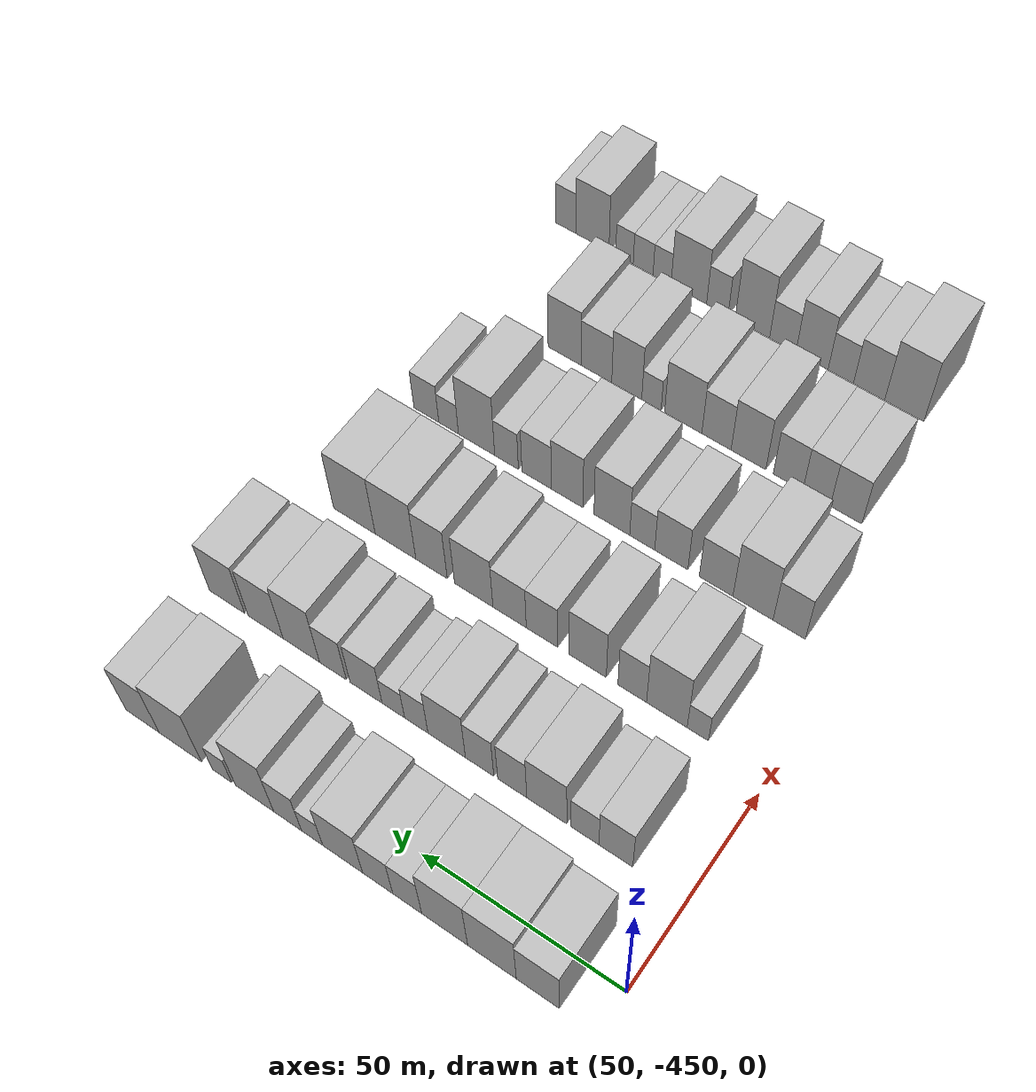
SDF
<sdf version="1.6">
 <world name="default">
  <model name="building_11">
   <static>1</static>
   <pose>50.0000 -435.6907 0 0.000000 0.000000 0.000000</pose>
   <link name="link">
    <pose>0 0 10.50 0 0 0</pose>
    <collision name="collision"><geometry><box><size>20.0000 10.3249 21.0000</size></box></geometry></collision>
    <visual name="visual">
     <cast_shadows>0</cast_shadows>
     <geometry><box><size>20.0000 10.3249 21.0000</size></box></geometry>
     <material>
      <script>
       <uri>model://HANNAS_wall/materials/scripts</uri>
       <uri>model://HANNAS_wall/materials/textures</uri>
       <name>vrc/HANNAS_wall</name>
      </script>
     </material>
    </visual>
   </link>
  </model>
  <model name="building_12">
   <static>1</static>
   <pose>50.0000 -424.6149 0 0.000000 0.000000 0.000000</pose>
   <link name="link">
    <pose>0 0 12.00 0 0 0</pose>
    <collision name="collision"><geometry><box><size>20.0000 11.8268 24.0000</size></box></geometry></collision>
    <visual name="visual">
     <cast_shadows>0</cast_shadows>
     <geometry><box><size>20.0000 11.8268 24.0000</size></box></geometry>
     <material>
      <script>
       <uri>model://HANNAS_wall/materials/scripts</uri>
       <uri>model://HANNAS_wall/materials/textures</uri>
       <name>vrc/HANNAS_wall</name>
      </script>
     </material>
    </visual>
   </link>
  </model>
  <model name="building_13">
   <static>1</static>
   <pose>50.0000 -413.0159 0 0.000000 0.000000 0.000000</pose>
   <link name="link">
    <pose>0 0 12.00 0 0 0</pose>
    <collision name="collision"><geometry><box><size>20.0000 11.3711 24.0000</size></box></geometry></collision>
    <visual name="visual">
     <cast_shadows>0</cast_shadows>
     <geometry><box><size>20.0000 11.3711 24.0000</size></box></geometry>
     <material>
      <script>
       <uri>model://HANNAS_wall/materials/scripts</uri>
       <uri>model://HANNAS_wall/materials/textures</uri>
       <name>vrc/HANNAS_wall</name>
      </script>
     </material>
    </visual>
   </link>
  </model>
  <model name="building_14">
   <static>1</static>
   <pose>50.0000 -403.6938 0 0.000000 0.000000 0.000000</pose>
   <link name="link">
    <pose>0 0 9.00 0 0 0</pose>
    <collision name="collision"><geometry><box><size>20.0000 7.2731 18.0000</size></box></geometry></collision>
    <visual name="visual">
     <cast_shadows>0</cast_shadows>
     <geometry><box><size>20.0000 7.2731 18.0000</size></box></geometry>
     <material>
      <script>
       <uri>model://HANNAS_wall/materials/scripts</uri>
       <uri>model://HANNAS_wall/materials/textures</uri>
       <name>vrc/HANNAS_wall</name>
      </script>
     </material>
    </visual>
   </link>
  </model>
  <model name="building_15">
   <static>1</static>
   <pose>50.0000 -396.2237 0 0.000000 0.000000 0.000000</pose>
   <link name="link">
    <pose>0 0 9.00 0 0 0</pose>
    <collision name="collision"><geometry><box><size>20.0000 7.6671 18.0000</size></box></geometry></collision>
    <visual name="visual">
     <cast_shadows>0</cast_shadows>
     <geometry><box><size>20.0000 7.6671 18.0000</size></box></geometry>
     <material>
      <script>
       <uri>model://HANNAS_wall/materials/scripts</uri>
       <uri>model://HANNAS_wall/materials/textures</uri>
       <name>vrc/HANNAS_wall</name>
      </script>
     </material>
    </visual>
   </link>
  </model>
  <model name="building_16">
   <static>1</static>
   <pose>50.0000 -387.2429 0 0.000000 0.000000 0.000000</pose>
   <link name="link">
    <pose>0 0 10.50 0 0 0</pose>
    <collision name="collision"><geometry><box><size>20.0000 10.2946 21.0000</size></box></geometry></collision>
    <visual name="visual">
     <cast_shadows>0</cast_shadows>
     <geometry><box><size>20.0000 10.2946 21.0000</size></box></geometry>
     <material>
      <script>
       <uri>model://HANNAS_wall/materials/scripts</uri>
       <uri>model://HANNAS_wall/materials/textures</uri>
       <name>vrc/HANNAS_wall</name>
      </script>
     </material>
    </visual>
   </link>
  </model>
  <model name="building_17">
   <static>1</static>
   <pose>50.0000 -379.3388 0 0.000000 0.000000 0.000000</pose>
   <link name="link">
    <pose>0 0 6.00 0 0 0</pose>
    <collision name="collision"><geometry><box><size>20.0000 5.5136 12.0000</size></box></geometry></collision>
    <visual name="visual">
     <cast_shadows>0</cast_shadows>
     <geometry><box><size>20.0000 5.5136 12.0000</size></box></geometry>
     <material>
      <script>
       <uri>model://HANNAS_wall/materials/scripts</uri>
       <uri>model://HANNAS_wall/materials/textures</uri>
       <name>vrc/HANNAS_wall</name>
      </script>
     </material>
    </visual>
   </link>
  </model>
  <model name="building_18">
   <static>1</static>
   <pose>50.0000 -372.9021 0 0.000000 0.000000 0.000000</pose>
   <link name="link">
    <pose>0 0 9.00 0 0 0</pose>
    <collision name="collision"><geometry><box><size>20.0000 7.3597 18.0000</size></box></geometry></collision>
    <visual name="visual">
     <cast_shadows>0</cast_shadows>
     <geometry><box><size>20.0000 7.3597 18.0000</size></box></geometry>
     <material>
      <script>
       <uri>model://HANNAS_wall/materials/scripts</uri>
       <uri>model://HANNAS_wall/materials/textures</uri>
       <name>vrc/HANNAS_wall</name>
      </script>
     </material>
    </visual>
   </link>
  </model>
  <model name="building_19">
   <static>1</static>
   <pose>50.0000 -364.1135 0 0.000000 0.000000 0.000000</pose>
   <link name="link">
    <pose>0 0 12.00 0 0 0</pose>
    <collision name="collision"><geometry><box><size>20.0000 10.2173 24.0000</size></box></geometry></collision>
    <visual name="visual">
     <cast_shadows>0</cast_shadows>
     <geometry><box><size>20.0000 10.2173 24.0000</size></box></geometry>
     <material>
      <script>
       <uri>model://HANNAS_wall/materials/scripts</uri>
       <uri>model://HANNAS_wall/materials/textures</uri>
       <name>vrc/HANNAS_wall</name>
      </script>
     </material>
    </visual>
   </link>
  </model>
  <model name="building_20">
   <static>1</static>
   <pose>50.0000 -355.3929 0 0.000000 0.000000 0.000000</pose>
   <link name="link">
    <pose>0 0 6.00 0 0 0</pose>
    <collision name="collision"><geometry><box><size>20.0000 5.2241 12.0000</size></box></geometry></collision>
    <visual name="visual">
     <cast_shadows>0</cast_shadows>
     <geometry><box><size>20.0000 5.2241 12.0000</size></box></geometry>
     <material>
      <script>
       <uri>model://HANNAS_wall/materials/scripts</uri>
       <uri>model://HANNAS_wall/materials/textures</uri>
       <name>vrc/HANNAS_wall</name>
      </script>
     </material>
    </visual>
   </link>
  </model>
  <model name="building_21">
   <static>1</static>
   <pose>50.0000 -343.9864 0 0.000000 0.000000 0.000000</pose>
   <link name="link">
    <pose>0 0 12.00 0 0 0</pose>
    <collision name="collision"><geometry><box><size>20.0000 11.5888 24.0000</size></box></geometry></collision>
    <visual name="visual">
     <cast_shadows>0</cast_shadows>
     <geometry><box><size>20.0000 11.5888 24.0000</size></box></geometry>
     <material>
      <script>
       <uri>model://HANNAS_wall/materials/scripts</uri>
       <uri>model://HANNAS_wall/materials/textures</uri>
       <name>vrc/HANNAS_wall</name>
      </script>
     </material>
    </visual>
   </link>
  </model>
  <model name="building_22">
   <static>1</static>
   <pose>50.0000 -333.5360 0 0.000000 0.000000 0.000000</pose>
   <link name="link">
    <pose>0 0 10.50 0 0 0</pose>
    <collision name="collision"><geometry><box><size>20.0000 9.3120 21.0000</size></box></geometry></collision>
    <visual name="visual">
     <cast_shadows>0</cast_shadows>
     <geometry><box><size>20.0000 9.3120 21.0000</size></box></geometry>
     <material>
      <script>
       <uri>model://HANNAS_wall/materials/scripts</uri>
       <uri>model://HANNAS_wall/materials/textures</uri>
       <name>vrc/HANNAS_wall</name>
      </script>
     </material>
    </visual>
   </link>
  </model>
  <model name="building_137">
   <static>1</static>
   <pose>82.0000 -432.7867 0 0.000000 0.000000 0.000000</pose>
   <link name="link">
    <pose>0 0 9.00 0 0 0</pose>
    <collision name="collision"><geometry><box><size>20.0000 8.2923 18.0000</size></box></geometry></collision>
    <visual name="visual">
     <cast_shadows>0</cast_shadows>
     <geometry><box><size>20.0000 8.2923 18.0000</size></box></geometry>
     <material>
      <script>
       <uri>model://HANNAS_wall/materials/scripts</uri>
       <uri>model://HANNAS_wall/materials/textures</uri>
       <name>vrc/HANNAS_wall</name>
      </script>
     </material>
    </visual>
   </link>
  </model>
  <model name="building_138">
   <static>1</static>
   <pose>82.0000 -425.1613 0 0.000000 0.000000 0.000000</pose>
   <link name="link">
    <pose>0 0 7.50 0 0 0</pose>
    <collision name="collision"><geometry><box><size>20.0000 6.9586 15.0000</size></box></geometry></collision>
    <visual name="visual">
     <cast_shadows>0</cast_shadows>
     <geometry><box><size>20.0000 6.9586 15.0000</size></box></geometry>
     <material>
      <script>
       <uri>model://HANNAS_wall/materials/scripts</uri>
       <uri>model://HANNAS_wall/materials/textures</uri>
       <name>vrc/HANNAS_wall</name>
      </script>
     </material>
    </visual>
   </link>
  </model>
  <model name="building_139">
   <static>1</static>
   <pose>82.0000 -415.6586 0 0.000000 0.000000 0.000000</pose>
   <link name="link">
    <pose>0 0 10.50 0 0 0</pose>
    <collision name="collision"><geometry><box><size>20.0000 10.0468 21.0000</size></box></geometry></collision>
    <visual name="visual">
     <cast_shadows>0</cast_shadows>
     <geometry><box><size>20.0000 10.0468 21.0000</size></box></geometry>
     <material>
      <script>
       <uri>model://HANNAS_wall/materials/scripts</uri>
       <uri>model://HANNAS_wall/materials/textures</uri>
       <name>vrc/HANNAS_wall</name>
      </script>
     </material>
    </visual>
   </link>
  </model>
  <model name="building_140">
   <static>1</static>
   <pose>82.0000 -406.9280 0 0.000000 0.000000 0.000000</pose>
   <link name="link">
    <pose>0 0 9.00 0 0 0</pose>
    <collision name="collision"><geometry><box><size>20.0000 7.4143 18.0000</size></box></geometry></collision>
    <visual name="visual">
     <cast_shadows>0</cast_shadows>
     <geometry><box><size>20.0000 7.4143 18.0000</size></box></geometry>
     <material>
      <script>
       <uri>model://HANNAS_wall/materials/scripts</uri>
       <uri>model://HANNAS_wall/materials/textures</uri>
       <name>vrc/HANNAS_wall</name>
      </script>
     </material>
    </visual>
   </link>
  </model>
  <model name="building_141">
   <static>1</static>
   <pose>82.0000 -398.5708 0 0.000000 0.000000 0.000000</pose>
   <link name="link">
    <pose>0 0 9.00 0 0 0</pose>
    <collision name="collision"><geometry><box><size>20.0000 7.3001 18.0000</size></box></geometry></collision>
    <visual name="visual">
     <cast_shadows>0</cast_shadows>
     <geometry><box><size>20.0000 7.3001 18.0000</size></box></geometry>
     <material>
      <script>
       <uri>model://HANNAS_wall/materials/scripts</uri>
       <uri>model://HANNAS_wall/materials/textures</uri>
       <name>vrc/HANNAS_wall</name>
      </script>
     </material>
    </visual>
   </link>
  </model>
  <model name="building_142">
   <static>1</static>
   <pose>82.0000 -390.0211 0 0.000000 0.000000 0.000000</pose>
   <link name="link">
    <pose>0 0 10.50 0 0 0</pose>
    <collision name="collision"><geometry><box><size>20.0000 9.7993 21.0000</size></box></geometry></collision>
    <visual name="visual">
     <cast_shadows>0</cast_shadows>
     <geometry><box><size>20.0000 9.7993 21.0000</size></box></geometry>
     <material>
      <script>
       <uri>model://HANNAS_wall/materials/scripts</uri>
       <uri>model://HANNAS_wall/materials/textures</uri>
       <name>vrc/HANNAS_wall</name>
      </script>
     </material>
    </visual>
   </link>
  </model>
  <model name="building_143">
   <static>1</static>
   <pose>82.0000 -382.0271 0 0.000000 0.000000 0.000000</pose>
   <link name="link">
    <pose>0 0 7.50 0 0 0</pose>
    <collision name="collision"><geometry><box><size>20.0000 6.1888 15.0000</size></box></geometry></collision>
    <visual name="visual">
     <cast_shadows>0</cast_shadows>
     <geometry><box><size>20.0000 6.1888 15.0000</size></box></geometry>
     <material>
      <script>
       <uri>model://HANNAS_wall/materials/scripts</uri>
       <uri>model://HANNAS_wall/materials/textures</uri>
       <name>vrc/HANNAS_wall</name>
      </script>
     </material>
    </visual>
   </link>
  </model>
  <model name="building_144">
   <static>1</static>
   <pose>82.0000 -375.9438 0 0.000000 0.000000 0.000000</pose>
   <link name="link">
    <pose>0 0 6.00 0 0 0</pose>
    <collision name="collision"><geometry><box><size>20.0000 5.9779 12.0000</size></box></geometry></collision>
    <visual name="visual">
     <cast_shadows>0</cast_shadows>
     <geometry><box><size>20.0000 5.9779 12.0000</size></box></geometry>
     <material>
      <script>
       <uri>model://HANNAS_wall/materials/scripts</uri>
       <uri>model://HANNAS_wall/materials/textures</uri>
       <name>vrc/HANNAS_wall</name>
      </script>
     </material>
    </visual>
   </link>
  </model>
  <model name="building_145">
   <static>1</static>
   <pose>82.0000 -368.6232 0 0.000000 0.000000 0.000000</pose>
   <link name="link">
    <pose>0 0 9.00 0 0 0</pose>
    <collision name="collision"><geometry><box><size>20.0000 8.6633 18.0000</size></box></geometry></collision>
    <visual name="visual">
     <cast_shadows>0</cast_shadows>
     <geometry><box><size>20.0000 8.6633 18.0000</size></box></geometry>
     <material>
      <script>
       <uri>model://HANNAS_wall/materials/scripts</uri>
       <uri>model://HANNAS_wall/materials/textures</uri>
       <name>vrc/HANNAS_wall</name>
      </script>
     </material>
    </visual>
   </link>
  </model>
  <model name="building_146">
   <static>1</static>
   <pose>82.0000 -359.6373 0 0.000000 0.000000 0.000000</pose>
   <link name="link">
    <pose>0 0 9.00 0 0 0</pose>
    <collision name="collision"><geometry><box><size>20.0000 7.3085 18.0000</size></box></geometry></collision>
    <visual name="visual">
     <cast_shadows>0</cast_shadows>
     <geometry><box><size>20.0000 7.3085 18.0000</size></box></geometry>
     <material>
      <script>
       <uri>model://HANNAS_wall/materials/scripts</uri>
       <uri>model://HANNAS_wall/materials/textures</uri>
       <name>vrc/HANNAS_wall</name>
      </script>
     </material>
    </visual>
   </link>
  </model>
  <model name="building_147">
   <static>1</static>
   <pose>82.0000 -350.9423 0 0.000000 0.000000 0.000000</pose>
   <link name="link">
    <pose>0 0 12.00 0 0 0</pose>
    <collision name="collision"><geometry><box><size>20.0000 10.0813 24.0000</size></box></geometry></collision>
    <visual name="visual">
     <cast_shadows>0</cast_shadows>
     <geometry><box><size>20.0000 10.0813 24.0000</size></box></geometry>
     <material>
      <script>
       <uri>model://HANNAS_wall/materials/scripts</uri>
       <uri>model://HANNAS_wall/materials/textures</uri>
       <name>vrc/HANNAS_wall</name>
      </script>
     </material>
    </visual>
   </link>
  </model>
  <model name="building_148">
   <static>1</static>
   <pose>82.0000 -340.9836 0 0.000000 0.000000 0.000000</pose>
   <link name="link">
    <pose>0 0 10.50 0 0 0</pose>
    <collision name="collision"><geometry><box><size>20.0000 9.8362 21.0000</size></box></geometry></collision>
    <visual name="visual">
     <cast_shadows>0</cast_shadows>
     <geometry><box><size>20.0000 9.8362 21.0000</size></box></geometry>
     <material>
      <script>
       <uri>model://HANNAS_wall/materials/scripts</uri>
       <uri>model://HANNAS_wall/materials/textures</uri>
       <name>vrc/HANNAS_wall</name>
      </script>
     </material>
    </visual>
   </link>
  </model>
  <model name="building_149">
   <static>1</static>
   <pose>82.0000 -330.0808 0 0.000000 0.000000 0.000000</pose>
   <link name="link">
    <pose>0 0 10.50 0 0 0</pose>
    <collision name="collision"><geometry><box><size>20.0000 9.9692 21.0000</size></box></geometry></collision>
    <visual name="visual">
     <cast_shadows>0</cast_shadows>
     <geometry><box><size>20.0000 9.9692 21.0000</size></box></geometry>
     <material>
      <script>
       <uri>model://HANNAS_wall/materials/scripts</uri>
       <uri>model://HANNAS_wall/materials/textures</uri>
       <name>vrc/HANNAS_wall</name>
      </script>
     </material>
    </visual>
   </link>
  </model>
  <model name="building_249">
   <static>1</static>
   <pose>114.0000 -432.3107 0 0.000000 0.000000 0.000000</pose>
   <link name="link">
    <pose>0 0 6.00 0 0 0</pose>
    <collision name="collision"><geometry><box><size>20.0000 5.3300 12.0000</size></box></geometry></collision>
    <visual name="visual">
     <cast_shadows>0</cast_shadows>
     <geometry><box><size>20.0000 5.3300 12.0000</size></box></geometry>
     <material>
      <script>
       <uri>model://HANNAS_wall/materials/scripts</uri>
       <uri>model://HANNAS_wall/materials/textures</uri>
       <name>vrc/HANNAS_wall</name>
      </script>
     </material>
    </visual>
   </link>
  </model>
  <model name="building_250">
   <static>1</static>
   <pose>114.0000 -424.5151 0 0.000000 0.000000 0.000000</pose>
   <link name="link">
    <pose>0 0 12.00 0 0 0</pose>
    <collision name="collision"><geometry><box><size>20.0000 10.2613 24.0000</size></box></geometry></collision>
    <visual name="visual">
     <cast_shadows>0</cast_shadows>
     <geometry><box><size>20.0000 10.2613 24.0000</size></box></geometry>
     <material>
      <script>
       <uri>model://HANNAS_wall/materials/scripts</uri>
       <uri>model://HANNAS_wall/materials/textures</uri>
       <name>vrc/HANNAS_wall</name>
      </script>
     </material>
    </visual>
   </link>
  </model>
  <model name="building_251">
   <static>1</static>
   <pose>114.0000 -415.7238 0 0.000000 0.000000 0.000000</pose>
   <link name="link">
    <pose>0 0 9.00 0 0 0</pose>
    <collision name="collision"><geometry><box><size>20.0000 7.3212 18.0000</size></box></geometry></collision>
    <visual name="visual">
     <cast_shadows>0</cast_shadows>
     <geometry><box><size>20.0000 7.3212 18.0000</size></box></geometry>
     <material>
      <script>
       <uri>model://HANNAS_wall/materials/scripts</uri>
       <uri>model://HANNAS_wall/materials/textures</uri>
       <name>vrc/HANNAS_wall</name>
      </script>
     </material>
    </visual>
   </link>
  </model>
  <model name="building_252">
   <static>1</static>
   <pose>114.0000 -404.2135 0 0.000000 0.000000 0.000000</pose>
   <link name="link">
    <pose>0 0 10.50 0 0 0</pose>
    <collision name="collision"><geometry><box><size>20.0000 9.6995 21.0000</size></box></geometry></collision>
    <visual name="visual">
     <cast_shadows>0</cast_shadows>
     <geometry><box><size>20.0000 9.6995 21.0000</size></box></geometry>
     <material>
      <script>
       <uri>model://HANNAS_wall/materials/scripts</uri>
       <uri>model://HANNAS_wall/materials/textures</uri>
       <name>vrc/HANNAS_wall</name>
      </script>
     </material>
    </visual>
   </link>
  </model>
  <model name="building_253">
   <static>1</static>
   <pose>114.0000 -392.2167 0 0.000000 0.000000 0.000000</pose>
   <link name="link">
    <pose>0 0 9.00 0 0 0</pose>
    <collision name="collision"><geometry><box><size>20.0000 8.2942 18.0000</size></box></geometry></collision>
    <visual name="visual">
     <cast_shadows>0</cast_shadows>
     <geometry><box><size>20.0000 8.2942 18.0000</size></box></geometry>
     <material>
      <script>
       <uri>model://HANNAS_wall/materials/scripts</uri>
       <uri>model://HANNAS_wall/materials/textures</uri>
       <name>vrc/HANNAS_wall</name>
      </script>
     </material>
    </visual>
   </link>
  </model>
  <model name="building_254">
   <static>1</static>
   <pose>114.0000 -383.5840 0 0.000000 0.000000 0.000000</pose>
   <link name="link">
    <pose>0 0 9.00 0 0 0</pose>
    <collision name="collision"><geometry><box><size>20.0000 8.9711 18.0000</size></box></geometry></collision>
    <visual name="visual">
     <cast_shadows>0</cast_shadows>
     <geometry><box><size>20.0000 8.9711 18.0000</size></box></geometry>
     <material>
      <script>
       <uri>model://HANNAS_wall/materials/scripts</uri>
       <uri>model://HANNAS_wall/materials/textures</uri>
       <name>vrc/HANNAS_wall</name>
      </script>
     </material>
    </visual>
   </link>
  </model>
  <model name="building_255">
   <static>1</static>
   <pose>114.0000 -373.8896 0 0.000000 0.000000 0.000000</pose>
   <link name="link">
    <pose>0 0 10.50 0 0 0</pose>
    <collision name="collision"><geometry><box><size>20.0000 10.4177 21.0000</size></box></geometry></collision>
    <visual name="visual">
     <cast_shadows>0</cast_shadows>
     <geometry><box><size>20.0000 10.4177 21.0000</size></box></geometry>
     <material>
      <script>
       <uri>model://HANNAS_wall/materials/scripts</uri>
       <uri>model://HANNAS_wall/materials/textures</uri>
       <name>vrc/HANNAS_wall</name>
      </script>
     </material>
    </visual>
   </link>
  </model>
  <model name="building_256">
   <static>1</static>
   <pose>114.0000 -362.3413 0 0.000000 0.000000 0.000000</pose>
   <link name="link">
    <pose>0 0 10.50 0 0 0</pose>
    <collision name="collision"><geometry><box><size>20.0000 8.6790 21.0000</size></box></geometry></collision>
    <visual name="visual">
     <cast_shadows>0</cast_shadows>
     <geometry><box><size>20.0000 8.6790 21.0000</size></box></geometry>
     <material>
      <script>
       <uri>model://HANNAS_wall/materials/scripts</uri>
       <uri>model://HANNAS_wall/materials/textures</uri>
       <name>vrc/HANNAS_wall</name>
      </script>
     </material>
    </visual>
   </link>
  </model>
  <model name="building_257">
   <static>1</static>
   <pose>114.0000 -352.2941 0 0.000000 0.000000 0.000000</pose>
   <link name="link">
    <pose>0 0 12.00 0 0 0</pose>
    <collision name="collision"><geometry><box><size>20.0000 11.4153 24.0000</size></box></geometry></collision>
    <visual name="visual">
     <cast_shadows>0</cast_shadows>
     <geometry><box><size>20.0000 11.4153 24.0000</size></box></geometry>
     <material>
      <script>
       <uri>model://HANNAS_wall/materials/scripts</uri>
       <uri>model://HANNAS_wall/materials/textures</uri>
       <name>vrc/HANNAS_wall</name>
      </script>
     </material>
    </visual>
   </link>
  </model>
  <model name="building_258">
   <static>1</static>
   <pose>114.0000 -340.6856 0 0.000000 0.000000 0.000000</pose>
   <link name="link">
    <pose>0 0 12.00 0 0 0</pose>
    <collision name="collision"><geometry><box><size>20.0000 11.8019 24.0000</size></box></geometry></collision>
    <visual name="visual">
     <cast_shadows>0</cast_shadows>
     <geometry><box><size>20.0000 11.8019 24.0000</size></box></geometry>
     <material>
      <script>
       <uri>model://HANNAS_wall/materials/scripts</uri>
       <uri>model://HANNAS_wall/materials/textures</uri>
       <name>vrc/HANNAS_wall</name>
      </script>
     </material>
    </visual>
   </link>
  </model>
  <model name="building_365">
   <static>1</static>
   <pose>146.0000 -435.6663 0 0.000000 0.000000 0.000000</pose>
   <link name="link">
    <pose>0 0 9.00 0 0 0</pose>
    <collision name="collision"><geometry><box><size>20.0000 8.1982 18.0000</size></box></geometry></collision>
    <visual name="visual">
     <cast_shadows>0</cast_shadows>
     <geometry><box><size>20.0000 8.1982 18.0000</size></box></geometry>
     <material>
      <script>
       <uri>model://HANNAS_wall/materials/scripts</uri>
       <uri>model://HANNAS_wall/materials/textures</uri>
       <name>vrc/HANNAS_wall</name>
      </script>
     </material>
    </visual>
   </link>
  </model>
  <model name="building_366">
   <static>1</static>
   <pose>146.0000 -426.4045 0 0.000000 0.000000 0.000000</pose>
   <link name="link">
    <pose>0 0 12.00 0 0 0</pose>
    <collision name="collision"><geometry><box><size>20.0000 10.3252 24.0000</size></box></geometry></collision>
    <visual name="visual">
     <cast_shadows>0</cast_shadows>
     <geometry><box><size>20.0000 10.3252 24.0000</size></box></geometry>
     <material>
      <script>
       <uri>model://HANNAS_wall/materials/scripts</uri>
       <uri>model://HANNAS_wall/materials/textures</uri>
       <name>vrc/HANNAS_wall</name>
      </script>
     </material>
    </visual>
   </link>
  </model>
  <model name="building_367">
   <static>1</static>
   <pose>146.0000 -416.8572 0 0.000000 0.000000 0.000000</pose>
   <link name="link">
    <pose>0 0 9.00 0 0 0</pose>
    <collision name="collision"><geometry><box><size>20.0000 8.7695 18.0000</size></box></geometry></collision>
    <visual name="visual">
     <cast_shadows>0</cast_shadows>
     <geometry><box><size>20.0000 8.7695 18.0000</size></box></geometry>
     <material>
      <script>
       <uri>model://HANNAS_wall/materials/scripts</uri>
       <uri>model://HANNAS_wall/materials/textures</uri>
       <name>vrc/HANNAS_wall</name>
      </script>
     </material>
    </visual>
   </link>
  </model>
  <model name="building_368">
   <static>1</static>
   <pose>146.0000 -405.0763 0 0.000000 0.000000 0.000000</pose>
   <link name="link">
    <pose>0 0 9.00 0 0 0</pose>
    <collision name="collision"><geometry><box><size>20.0000 8.7922 18.0000</size></box></geometry></collision>
    <visual name="visual">
     <cast_shadows>0</cast_shadows>
     <geometry><box><size>20.0000 8.7922 18.0000</size></box></geometry>
     <material>
      <script>
       <uri>model://HANNAS_wall/materials/scripts</uri>
       <uri>model://HANNAS_wall/materials/textures</uri>
       <name>vrc/HANNAS_wall</name>
      </script>
     </material>
    </visual>
   </link>
  </model>
  <model name="building_369">
   <static>1</static>
   <pose>146.0000 -397.3390 0 0.000000 0.000000 0.000000</pose>
   <link name="link">
    <pose>0 0 7.50 0 0 0</pose>
    <collision name="collision"><geometry><box><size>20.0000 6.6825 15.0000</size></box></geometry></collision>
    <visual name="visual">
     <cast_shadows>0</cast_shadows>
     <geometry><box><size>20.0000 6.6825 15.0000</size></box></geometry>
     <material>
      <script>
       <uri>model://HANNAS_wall/materials/scripts</uri>
       <uri>model://HANNAS_wall/materials/textures</uri>
       <name>vrc/HANNAS_wall</name>
      </script>
     </material>
    </visual>
   </link>
  </model>
  <model name="building_370">
   <static>1</static>
   <pose>146.0000 -389.1620 0 0.000000 0.000000 0.000000</pose>
   <link name="link">
    <pose>0 0 10.50 0 0 0</pose>
    <collision name="collision"><geometry><box><size>20.0000 9.6715 21.0000</size></box></geometry></collision>
    <visual name="visual">
     <cast_shadows>0</cast_shadows>
     <geometry><box><size>20.0000 9.6715 21.0000</size></box></geometry>
     <material>
      <script>
       <uri>model://HANNAS_wall/materials/scripts</uri>
       <uri>model://HANNAS_wall/materials/textures</uri>
       <name>vrc/HANNAS_wall</name>
      </script>
     </material>
    </visual>
   </link>
  </model>
  <model name="building_371">
   <static>1</static>
   <pose>146.0000 -376.9844 0 0.000000 0.000000 0.000000</pose>
   <link name="link">
    <pose>0 0 10.50 0 0 0</pose>
    <collision name="collision"><geometry><box><size>20.0000 8.6838 21.0000</size></box></geometry></collision>
    <visual name="visual">
     <cast_shadows>0</cast_shadows>
     <geometry><box><size>20.0000 8.6838 21.0000</size></box></geometry>
     <material>
      <script>
       <uri>model://HANNAS_wall/materials/scripts</uri>
       <uri>model://HANNAS_wall/materials/textures</uri>
       <name>vrc/HANNAS_wall</name>
      </script>
     </material>
    </visual>
   </link>
  </model>
  <model name="building_372">
   <static>1</static>
   <pose>146.0000 -368.5284 0 0.000000 0.000000 0.000000</pose>
   <link name="link">
    <pose>0 0 9.00 0 0 0</pose>
    <collision name="collision"><geometry><box><size>20.0000 8.2281 18.0000</size></box></geometry></collision>
    <visual name="visual">
     <cast_shadows>0</cast_shadows>
     <geometry><box><size>20.0000 8.2281 18.0000</size></box></geometry>
     <material>
      <script>
       <uri>model://HANNAS_wall/materials/scripts</uri>
       <uri>model://HANNAS_wall/materials/textures</uri>
       <name>vrc/HANNAS_wall</name>
      </script>
     </material>
    </visual>
   </link>
  </model>
  <model name="building_373">
   <static>1</static>
   <pose>146.0000 -360.0771 0 0.000000 0.000000 0.000000</pose>
   <link name="link">
    <pose>0 0 7.50 0 0 0</pose>
    <collision name="collision"><geometry><box><size>20.0000 6.6744 15.0000</size></box></geometry></collision>
    <visual name="visual">
     <cast_shadows>0</cast_shadows>
     <geometry><box><size>20.0000 6.6744 15.0000</size></box></geometry>
     <material>
      <script>
       <uri>model://HANNAS_wall/materials/scripts</uri>
       <uri>model://HANNAS_wall/materials/textures</uri>
       <name>vrc/HANNAS_wall</name>
      </script>
     </material>
    </visual>
   </link>
  </model>
  <model name="building_374">
   <static>1</static>
   <pose>146.0000 -351.5703 0 0.000000 0.000000 0.000000</pose>
   <link name="link">
    <pose>0 0 12.00 0 0 0</pose>
    <collision name="collision"><geometry><box><size>20.0000 10.3393 24.0000</size></box></geometry></collision>
    <visual name="visual">
     <cast_shadows>0</cast_shadows>
     <geometry><box><size>20.0000 10.3393 24.0000</size></box></geometry>
     <material>
      <script>
       <uri>model://HANNAS_wall/materials/scripts</uri>
       <uri>model://HANNAS_wall/materials/textures</uri>
       <name>vrc/HANNAS_wall</name>
      </script>
     </material>
    </visual>
   </link>
  </model>
  <model name="building_375">
   <static>1</static>
   <pose>146.0000 -343.5665 0 0.000000 0.000000 0.000000</pose>
   <link name="link">
    <pose>0 0 6.00 0 0 0</pose>
    <collision name="collision"><geometry><box><size>20.0000 5.6684 12.0000</size></box></geometry></collision>
    <visual name="visual">
     <cast_shadows>0</cast_shadows>
     <geometry><box><size>20.0000 5.6684 12.0000</size></box></geometry>
     <material>
      <script>
       <uri>model://HANNAS_wall/materials/scripts</uri>
       <uri>model://HANNAS_wall/materials/textures</uri>
       <name>vrc/HANNAS_wall</name>
      </script>
     </material>
    </visual>
   </link>
  </model>
  <model name="building_376">
   <static>1</static>
   <pose>146.0000 -337.1337 0 0.000000 0.000000 0.000000</pose>
   <link name="link">
    <pose>0 0 7.50 0 0 0</pose>
    <collision name="collision"><geometry><box><size>20.0000 7.1970 15.0000</size></box></geometry></collision>
    <visual name="visual">
     <cast_shadows>0</cast_shadows>
     <geometry><box><size>20.0000 7.1970 15.0000</size></box></geometry>
     <material>
      <script>
       <uri>model://HANNAS_wall/materials/scripts</uri>
       <uri>model://HANNAS_wall/materials/textures</uri>
       <name>vrc/HANNAS_wall</name>
      </script>
     </material>
    </visual>
   </link>
  </model>
  <model name="building_490">
   <static>1</static>
   <pose>178.0000 -431.4804 0 0.000000 0.000000 0.000000</pose>
   <link name="link">
    <pose>0 0 9.00 0 0 0</pose>
    <collision name="collision"><geometry><box><size>20.0000 8.2327 18.0000</size></box></geometry></collision>
    <visual name="visual">
     <cast_shadows>0</cast_shadows>
     <geometry><box><size>20.0000 8.2327 18.0000</size></box></geometry>
     <material>
      <script>
       <uri>model://HANNAS_wall/materials/scripts</uri>
       <uri>model://HANNAS_wall/materials/textures</uri>
       <name>vrc/HANNAS_wall</name>
      </script>
     </material>
    </visual>
   </link>
  </model>
  <model name="building_491">
   <static>1</static>
   <pose>178.0000 -423.7600 0 0.000000 0.000000 0.000000</pose>
   <link name="link">
    <pose>0 0 9.00 0 0 0</pose>
    <collision name="collision"><geometry><box><size>20.0000 7.2081 18.0000</size></box></geometry></collision>
    <visual name="visual">
     <cast_shadows>0</cast_shadows>
     <geometry><box><size>20.0000 7.2081 18.0000</size></box></geometry>
     <material>
      <script>
       <uri>model://HANNAS_wall/materials/scripts</uri>
       <uri>model://HANNAS_wall/materials/textures</uri>
       <name>vrc/HANNAS_wall</name>
      </script>
     </material>
    </visual>
   </link>
  </model>
  <model name="building_492">
   <static>1</static>
   <pose>178.0000 -416.2370 0 0.000000 0.000000 0.000000</pose>
   <link name="link">
    <pose>0 0 9.00 0 0 0</pose>
    <collision name="collision"><geometry><box><size>20.0000 7.8381 18.0000</size></box></geometry></collision>
    <visual name="visual">
     <cast_shadows>0</cast_shadows>
     <geometry><box><size>20.0000 7.8381 18.0000</size></box></geometry>
     <material>
      <script>
       <uri>model://HANNAS_wall/materials/scripts</uri>
       <uri>model://HANNAS_wall/materials/textures</uri>
       <name>vrc/HANNAS_wall</name>
      </script>
     </material>
    </visual>
   </link>
  </model>
  <model name="building_493">
   <static>1</static>
   <pose>178.0000 -405.6301 0 0.000000 0.000000 0.000000</pose>
   <link name="link">
    <pose>0 0 10.50 0 0 0</pose>
    <collision name="collision"><geometry><box><size>20.0000 9.3756 21.0000</size></box></geometry></collision>
    <visual name="visual">
     <cast_shadows>0</cast_shadows>
     <geometry><box><size>20.0000 9.3756 21.0000</size></box></geometry>
     <material>
      <script>
       <uri>model://HANNAS_wall/materials/scripts</uri>
       <uri>model://HANNAS_wall/materials/textures</uri>
       <name>vrc/HANNAS_wall</name>
      </script>
     </material>
    </visual>
   </link>
  </model>
  <model name="building_494">
   <static>1</static>
   <pose>178.0000 -396.9463 0 0.000000 0.000000 0.000000</pose>
   <link name="link">
    <pose>0 0 9.00 0 0 0</pose>
    <collision name="collision"><geometry><box><size>20.0000 7.9920 18.0000</size></box></geometry></collision>
    <visual name="visual">
     <cast_shadows>0</cast_shadows>
     <geometry><box><size>20.0000 7.9920 18.0000</size></box></geometry>
     <material>
      <script>
       <uri>model://HANNAS_wall/materials/scripts</uri>
       <uri>model://HANNAS_wall/materials/textures</uri>
       <name>vrc/HANNAS_wall</name>
      </script>
     </material>
    </visual>
   </link>
  </model>
  <model name="building_495">
   <static>1</static>
   <pose>178.0000 -387.8139 0 0.000000 0.000000 0.000000</pose>
   <link name="link">
    <pose>0 0 10.50 0 0 0</pose>
    <collision name="collision"><geometry><box><size>20.0000 10.2726 21.0000</size></box></geometry></collision>
    <visual name="visual">
     <cast_shadows>0</cast_shadows>
     <geometry><box><size>20.0000 10.2726 21.0000</size></box></geometry>
     <material>
      <script>
       <uri>model://HANNAS_wall/materials/scripts</uri>
       <uri>model://HANNAS_wall/materials/textures</uri>
       <name>vrc/HANNAS_wall</name>
      </script>
     </material>
    </visual>
   </link>
  </model>
  <model name="building_496">
   <static>1</static>
   <pose>178.0000 -378.9777 0 0.000000 0.000000 0.000000</pose>
   <link name="link">
    <pose>0 0 6.00 0 0 0</pose>
    <collision name="collision"><geometry><box><size>20.0000 5.3999 12.0000</size></box></geometry></collision>
    <visual name="visual">
     <cast_shadows>0</cast_shadows>
     <geometry><box><size>20.0000 5.3999 12.0000</size></box></geometry>
     <material>
      <script>
       <uri>model://HANNAS_wall/materials/scripts</uri>
       <uri>model://HANNAS_wall/materials/textures</uri>
       <name>vrc/HANNAS_wall</name>
      </script>
     </material>
    </visual>
   </link>
  </model>
  <model name="building_497">
   <static>1</static>
   <pose>178.0000 -372.0479 0 0.000000 0.000000 0.000000</pose>
   <link name="link">
    <pose>0 0 10.50 0 0 0</pose>
    <collision name="collision"><geometry><box><size>20.0000 8.4597 21.0000</size></box></geometry></collision>
    <visual name="visual">
     <cast_shadows>0</cast_shadows>
     <geometry><box><size>20.0000 8.4597 21.0000</size></box></geometry>
     <material>
      <script>
       <uri>model://HANNAS_wall/materials/scripts</uri>
       <uri>model://HANNAS_wall/materials/textures</uri>
       <name>vrc/HANNAS_wall</name>
      </script>
     </material>
    </visual>
   </link>
  </model>
  <model name="building_498">
   <static>1</static>
   <pose>178.0000 -363.4627 0 0.000000 0.000000 0.000000</pose>
   <link name="link">
    <pose>0 0 9.00 0 0 0</pose>
    <collision name="collision"><geometry><box><size>20.0000 8.7108 18.0000</size></box></geometry></collision>
    <visual name="visual">
     <cast_shadows>0</cast_shadows>
     <geometry><box><size>20.0000 8.7108 18.0000</size></box></geometry>
     <material>
      <script>
       <uri>model://HANNAS_wall/materials/scripts</uri>
       <uri>model://HANNAS_wall/materials/textures</uri>
       <name>vrc/HANNAS_wall</name>
      </script>
     </material>
    </visual>
   </link>
  </model>
  <model name="building_499">
   <static>1</static>
   <pose>178.0000 -354.3424 0 0.000000 0.000000 0.000000</pose>
   <link name="link">
    <pose>0 0 10.50 0 0 0</pose>
    <collision name="collision"><geometry><box><size>20.0000 9.5299 21.0000</size></box></geometry></collision>
    <visual name="visual">
     <cast_shadows>0</cast_shadows>
     <geometry><box><size>20.0000 9.5299 21.0000</size></box></geometry>
     <material>
      <script>
       <uri>model://HANNAS_wall/materials/scripts</uri>
       <uri>model://HANNAS_wall/materials/textures</uri>
       <name>vrc/HANNAS_wall</name>
      </script>
     </material>
    </visual>
   </link>
  </model>
  <model name="building_597">
   <static>1</static>
   <pose>210.0000 -428.6980 0 0.000000 0.000000 0.000000</pose>
   <link name="link">
    <pose>0 0 12.00 0 0 0</pose>
    <collision name="collision"><geometry><box><size>20.0000 10.4402 24.0000</size></box></geometry></collision>
    <visual name="visual">
     <cast_shadows>0</cast_shadows>
     <geometry><box><size>20.0000 10.4402 24.0000</size></box></geometry>
     <material>
      <script>
       <uri>model://HANNAS_wall/materials/scripts</uri>
       <uri>model://HANNAS_wall/materials/textures</uri>
       <name>vrc/HANNAS_wall</name>
      </script>
     </material>
    </visual>
   </link>
  </model>
  <model name="building_598">
   <static>1</static>
   <pose>210.0000 -419.2682 0 0.000000 0.000000 0.000000</pose>
   <link name="link">
    <pose>0 0 9.00 0 0 0</pose>
    <collision name="collision"><geometry><box><size>20.0000 8.4193 18.0000</size></box></geometry></collision>
    <visual name="visual">
     <cast_shadows>0</cast_shadows>
     <geometry><box><size>20.0000 8.4193 18.0000</size></box></geometry>
     <material>
      <script>
       <uri>model://HANNAS_wall/materials/scripts</uri>
       <uri>model://HANNAS_wall/materials/textures</uri>
       <name>vrc/HANNAS_wall</name>
      </script>
     </material>
    </visual>
   </link>
  </model>
  <model name="building_599">
   <static>1</static>
   <pose>210.0000 -411.6013 0 0.000000 0.000000 0.000000</pose>
   <link name="link">
    <pose>0 0 7.50 0 0 0</pose>
    <collision name="collision"><geometry><box><size>20.0000 6.9146 15.0000</size></box></geometry></collision>
    <visual name="visual">
     <cast_shadows>0</cast_shadows>
     <geometry><box><size>20.0000 6.9146 15.0000</size></box></geometry>
     <material>
      <script>
       <uri>model://HANNAS_wall/materials/scripts</uri>
       <uri>model://HANNAS_wall/materials/textures</uri>
       <name>vrc/HANNAS_wall</name>
      </script>
     </material>
    </visual>
   </link>
  </model>
  <model name="building_600">
   <static>1</static>
   <pose>210.0000 -403.7006 0 0.000000 0.000000 0.000000</pose>
   <link name="link">
    <pose>0 0 10.50 0 0 0</pose>
    <collision name="collision"><geometry><box><size>20.0000 8.8867 21.0000</size></box></geometry></collision>
    <visual name="visual">
     <cast_shadows>0</cast_shadows>
     <geometry><box><size>20.0000 8.8867 21.0000</size></box></geometry>
     <material>
      <script>
       <uri>model://HANNAS_wall/materials/scripts</uri>
       <uri>model://HANNAS_wall/materials/textures</uri>
       <name>vrc/HANNAS_wall</name>
      </script>
     </material>
    </visual>
   </link>
  </model>
  <model name="building_601">
   <static>1</static>
   <pose>210.0000 -395.6009 0 0.000000 0.000000 0.000000</pose>
   <link name="link">
    <pose>0 0 7.50 0 0 0</pose>
    <collision name="collision"><geometry><box><size>20.0000 7.3127 15.0000</size></box></geometry></collision>
    <visual name="visual">
     <cast_shadows>0</cast_shadows>
     <geometry><box><size>20.0000 7.3127 15.0000</size></box></geometry>
     <material>
      <script>
       <uri>model://HANNAS_wall/materials/scripts</uri>
       <uri>model://HANNAS_wall/materials/textures</uri>
       <name>vrc/HANNAS_wall</name>
      </script>
     </material>
    </visual>
   </link>
  </model>
  <model name="building_602">
   <static>1</static>
   <pose>210.0000 -387.0877 0 0.000000 0.000000 0.000000</pose>
   <link name="link">
    <pose>0 0 12.00 0 0 0</pose>
    <collision name="collision"><geometry><box><size>20.0000 9.7137 24.0000</size></box></geometry></collision>
    <visual name="visual">
     <cast_shadows>0</cast_shadows>
     <geometry><box><size>20.0000 9.7137 24.0000</size></box></geometry>
     <material>
      <script>
       <uri>model://HANNAS_wall/materials/scripts</uri>
       <uri>model://HANNAS_wall/materials/textures</uri>
       <name>vrc/HANNAS_wall</name>
      </script>
     </material>
    </visual>
   </link>
  </model>
  <model name="building_603">
   <static>1</static>
   <pose>210.0000 -377.1770 0 0.000000 0.000000 0.000000</pose>
   <link name="link">
    <pose>0 0 7.50 0 0 0</pose>
    <collision name="collision"><geometry><box><size>20.0000 6.1077 15.0000</size></box></geometry></collision>
    <visual name="visual">
     <cast_shadows>0</cast_shadows>
     <geometry><box><size>20.0000 6.1077 15.0000</size></box></geometry>
     <material>
      <script>
       <uri>model://HANNAS_wall/materials/scripts</uri>
       <uri>model://HANNAS_wall/materials/textures</uri>
       <name>vrc/HANNAS_wall</name>
      </script>
     </material>
    </visual>
   </link>
  </model>
  <model name="building_604">
   <static>1</static>
   <pose>210.0000 -368.9981 0 0.000000 0.000000 0.000000</pose>
   <link name="link">
    <pose>0 0 10.50 0 0 0</pose>
    <collision name="collision"><geometry><box><size>20.0000 10.2501 21.0000</size></box></geometry></collision>
    <visual name="visual">
     <cast_shadows>0</cast_shadows>
     <geometry><box><size>20.0000 10.2501 21.0000</size></box></geometry>
     <material>
      <script>
       <uri>model://HANNAS_wall/materials/scripts</uri>
       <uri>model://HANNAS_wall/materials/textures</uri>
       <name>vrc/HANNAS_wall</name>
      </script>
     </material>
    </visual>
   </link>
  </model>
  <model name="building_605">
   <static>1</static>
   <pose>210.0000 -361.2626 0 0.000000 0.000000 0.000000</pose>
   <link name="link">
    <pose>0 0 6.00 0 0 0</pose>
    <collision name="collision"><geometry><box><size>20.0000 5.2209 12.0000</size></box></geometry></collision>
    <visual name="visual">
     <cast_shadows>0</cast_shadows>
     <geometry><box><size>20.0000 5.2209 12.0000</size></box></geometry>
     <material>
      <script>
       <uri>model://HANNAS_wall/materials/scripts</uri>
       <uri>model://HANNAS_wall/materials/textures</uri>
       <name>vrc/HANNAS_wall</name>
      </script>
     </material>
    </visual>
   </link>
  </model>
  <model name="building_606">
   <static>1</static>
   <pose>210.0000 -355.7449 0 0.000000 0.000000 0.000000</pose>
   <link name="link">
    <pose>0 0 6.00 0 0 0</pose>
    <collision name="collision"><geometry><box><size>20.0000 5.8146 12.0000</size></box></geometry></collision>
    <visual name="visual">
     <cast_shadows>0</cast_shadows>
     <geometry><box><size>20.0000 5.8146 12.0000</size></box></geometry>
     <material>
      <script>
       <uri>model://HANNAS_wall/materials/scripts</uri>
       <uri>model://HANNAS_wall/materials/textures</uri>
       <name>vrc/HANNAS_wall</name>
      </script>
     </material>
    </visual>
   </link>
  </model>
  <model name="building_607">
   <static>1</static>
   <pose>210.0000 -350.2517 0 0.000000 0.000000 0.000000</pose>
   <link name="link">
    <pose>0 0 6.00 0 0 0</pose>
    <collision name="collision"><geometry><box><size>20.0000 5.1717 12.0000</size></box></geometry></collision>
    <visual name="visual">
     <cast_shadows>0</cast_shadows>
     <geometry><box><size>20.0000 5.1717 12.0000</size></box></geometry>
     <material>
      <script>
       <uri>model://HANNAS_wall/materials/scripts</uri>
       <uri>model://HANNAS_wall/materials/textures</uri>
       <name>vrc/HANNAS_wall</name>
      </script>
     </material>
    </visual>
   </link>
  </model>
  <model name="building_608">
   <static>1</static>
   <pose>210.0000 -340.7675 0 0.000000 0.000000 0.000000</pose>
   <link name="link">
    <pose>0 0 10.50 0 0 0</pose>
    <collision name="collision"><geometry><box><size>20.0000 9.7967 21.0000</size></box></geometry></collision>
    <visual name="visual">
     <cast_shadows>0</cast_shadows>
     <geometry><box><size>20.0000 9.7967 21.0000</size></box></geometry>
     <material>
      <script>
       <uri>model://HANNAS_wall/materials/scripts</uri>
       <uri>model://HANNAS_wall/materials/textures</uri>
       <name>vrc/HANNAS_wall</name>
      </script>
     </material>
    </visual>
   </link>
  </model>
  <model name="building_609">
   <static>1</static>
   <pose>210.0000 -332.7983 0 0.000000 0.000000 0.000000</pose>
   <link name="link">
    <pose>0 0 7.50 0 0 0</pose>
    <collision name="collision"><geometry><box><size>20.0000 6.1416 15.0000</size></box></geometry></collision>
    <visual name="visual">
     <cast_shadows>0</cast_shadows>
     <geometry><box><size>20.0000 6.1416 15.0000</size></box></geometry>
     <material>
      <script>
       <uri>model://HANNAS_wall/materials/scripts</uri>
       <uri>model://HANNAS_wall/materials/textures</uri>
       <name>vrc/HANNAS_wall</name>
      </script>
     </material>
    </visual>
   </link>
  </model>
 </world>
</sdf>
